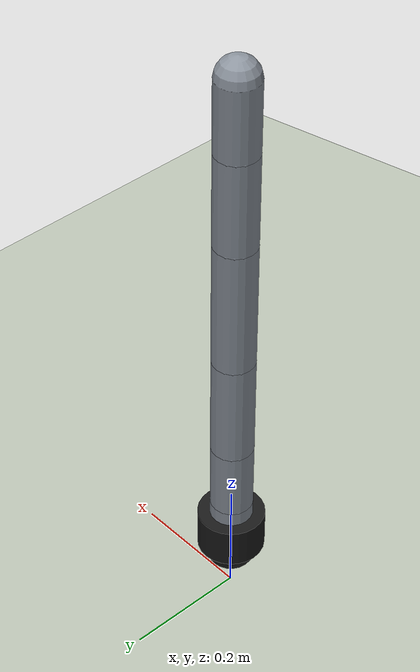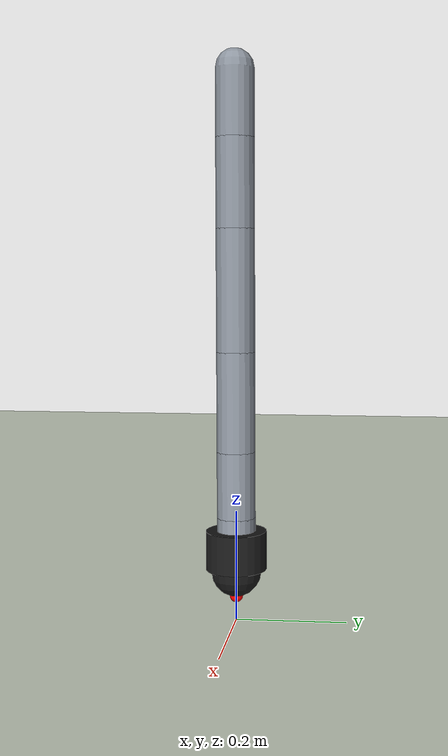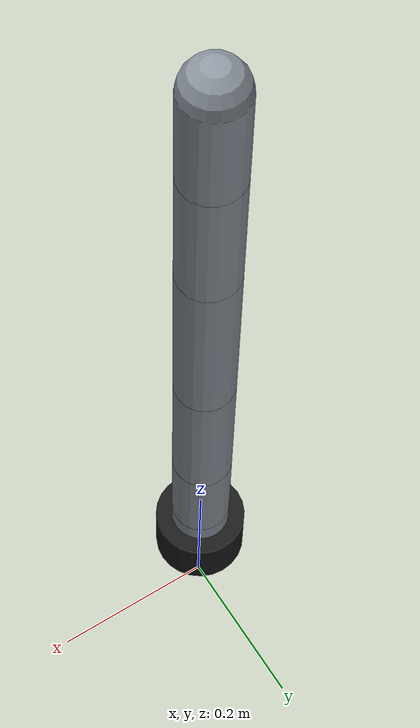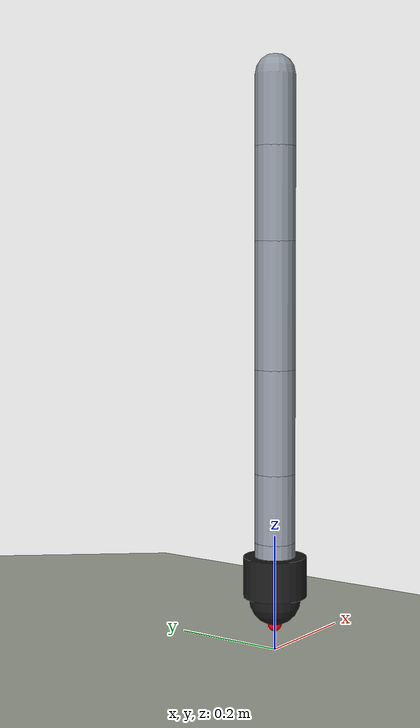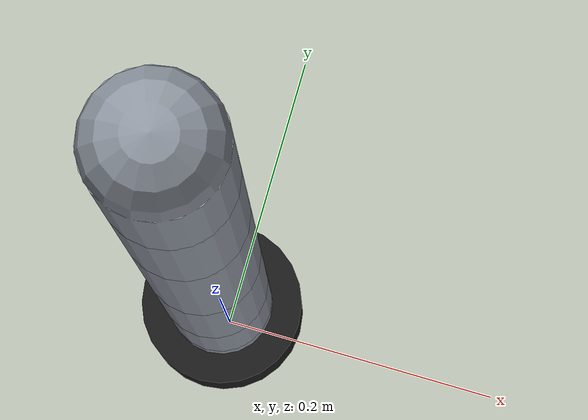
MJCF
<mujoco model="ur10e_tilted_plane_10deg_tcp_contact_point_v1_approx">
  <compiler angle="radian" autolimits="true"/>
  <option timestep="0.002" gravity="0 0 -9.81"/>
  <default>
    <joint damping="8" armature="0.02" limited="true"/>
    <geom type="capsule" size="0.035" density="1200" friction="1 0.005 0.0001"/>
  </default>
  <asset>
    <material name="steel" rgba="0.55 0.58 0.62 1"/>
    <material name="tool" rgba="0.1 0.1 0.1 1"/>
    <material name="surface" rgba="0.75 0.78 0.72 1"/>
  </asset>
  <worldbody>
    <light name="top" pos="0 0 2"/>
    <geom name="contact_plane" type="plane" pos="0 0 0" euler="0 0.1745329252 0" size="1.2 1.2 0.02" material="surface"/>
    <body name="base_link" pos="0 0 0.98985">
      <joint name="shoulder_pan_joint" axis="0 0 1" range="-6.283185307 6.283185307"/>
      <geom name="base_geom" fromto="0 0 0 0 0 -0.12" material="steel"/>
      <body name="shoulder_link" pos="0 0 -0.12">
        <joint name="shoulder_lift_joint" axis="0 1 0" range="-6.283185307 6.283185307"/>
        <geom name="shoulder_geom" fromto="0 0 0 0 0 -0.16" material="steel"/>
        <body name="upper_arm_link" pos="0 0 -0.16">
          <joint name="elbow_joint" axis="0 1 0" range="-3.141592654 3.141592654"/>
          <geom name="upper_arm_geom" fromto="0 0 0 0 0 -0.22" material="steel"/>
          <body name="forearm_link" pos="0 0 -0.22">
            <joint name="wrist_1_joint" axis="0 1 0" range="-6.283185307 6.283185307"/>
            <geom name="forearm_geom" fromto="0 0 0 0 0 -0.18" material="steel"/>
            <body name="wrist_1_link" pos="0 0 -0.18">
              <joint name="wrist_2_joint" axis="1 0 0" range="-6.283185307 6.283185307"/>
              <geom name="wrist_1_geom" fromto="0 0 0 0 0 -0.12" material="steel"/>
              <body name="wrist_2_link" pos="0 0 -0.12">
                <joint name="wrist_3_joint" axis="0 1 0" range="-6.283185307 6.283185307"/>
                <geom name="wrist_2_geom" fromto="0 0 0 0 0 -0.09" material="steel"/>
                <body name="onrobot_hex_v1_primitive" pos="0 0 -0.06">
                  <geom name="hex_body_primitive" type="cylinder" size="0.055 0.035" material="tool" density="1000"/>
                  <body name="eoat_v13_tcp_guess" pos="0 0 -0.085">
                    <geom name="contact_tip" type="sphere" pos="0 0 0.045" size="0.045" material="tool" density="700"/>
                    <site name="tcp_site_unverified_85mm" pos="0 0 0" size="0.012" rgba="1 0 0 1"/>
                  </body>
                </body>
              </body>
            </body>
          </body>
        </body>
      </body>
    </body>
  </worldbody>
  <actuator>
    <motor name="shoulder_pan_motor" joint="shoulder_pan_joint" gear="20" ctrllimited="true" ctrlrange="-1 1"/>
    <motor name="shoulder_lift_motor" joint="shoulder_lift_joint" gear="20" ctrllimited="true" ctrlrange="-1 1"/>
    <motor name="elbow_motor" joint="elbow_joint" gear="20" ctrllimited="true" ctrlrange="-1 1"/>
    <motor name="wrist_1_motor" joint="wrist_1_joint" gear="10" ctrllimited="true" ctrlrange="-1 1"/>
    <motor name="wrist_2_motor" joint="wrist_2_joint" gear="10" ctrllimited="true" ctrlrange="-1 1"/>
    <motor name="wrist_3_motor" joint="wrist_3_joint" gear="10" ctrllimited="true" ctrlrange="-1 1"/>
  </actuator>
</mujoco>
